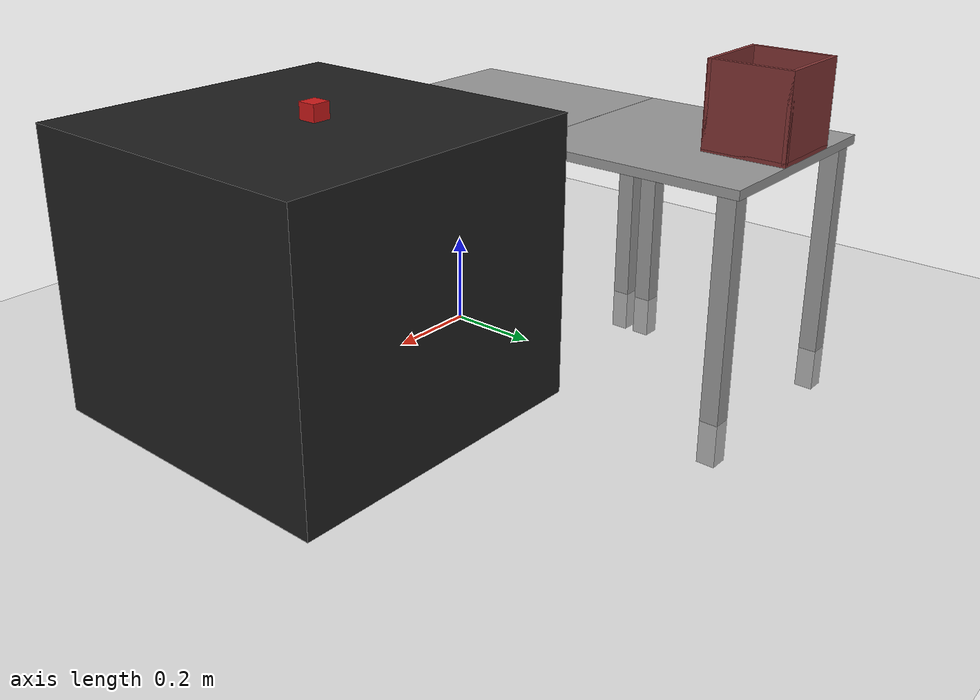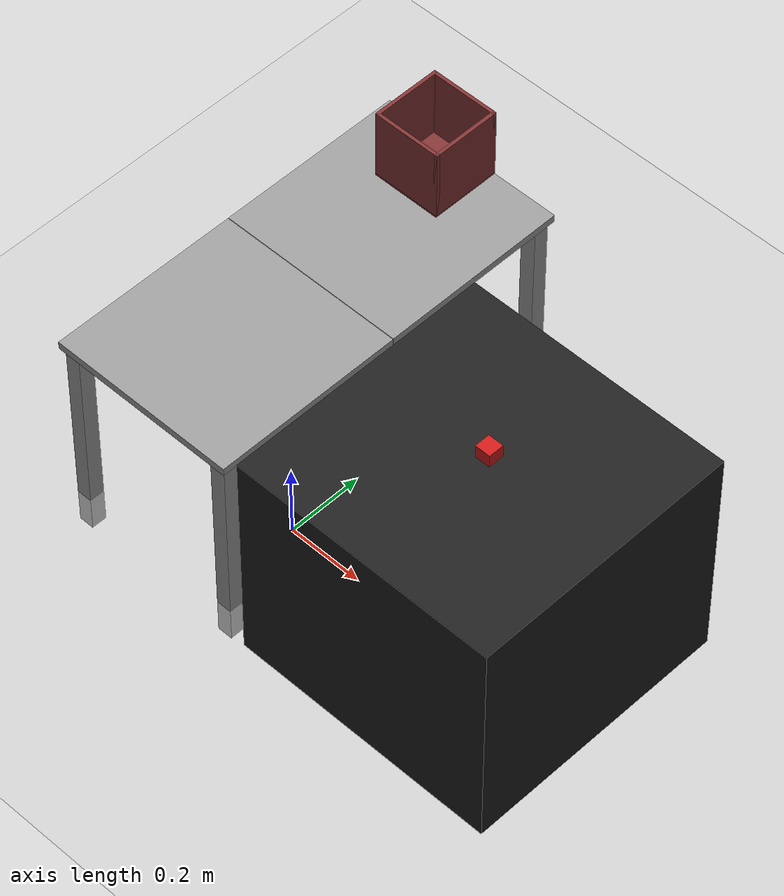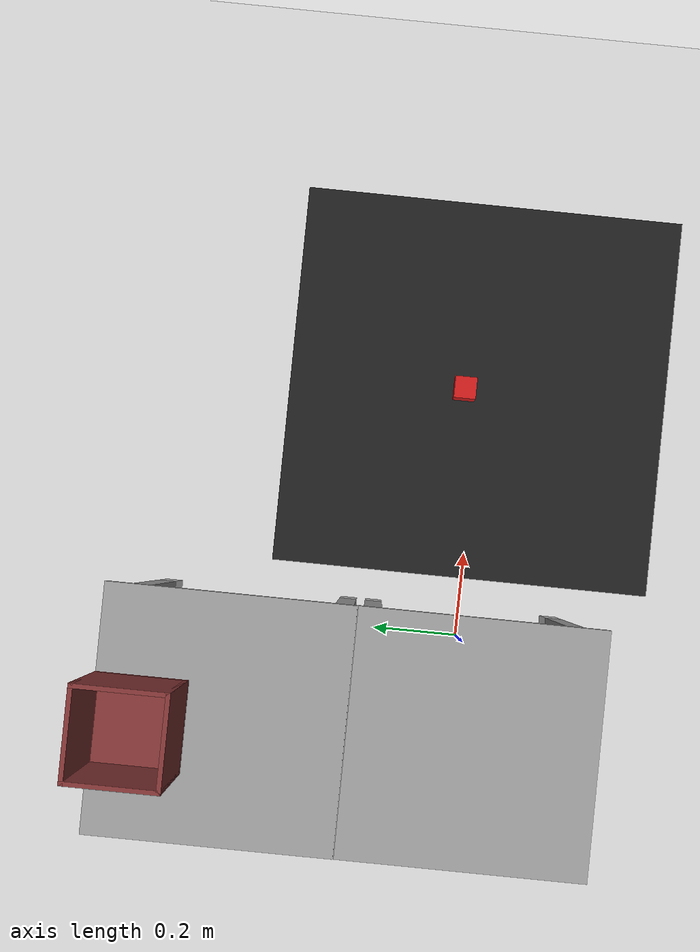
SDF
<sdf version="1.7">
 <world name="default">
  <plugin name="ros_link_attacher_plugin" filename="libgazebo_ros_link_attacher.so"/>
  <light name="sun" type="directional">
   <pose>0 0 10 0 -0 0</pose>
   <diffuse>0.8 0.8 0.8 1</diffuse>
   <specular>0.2 0.2 0.2 1</specular>
   <attenuation>
    <range>1000</range>
    <constant>0.9</constant>
    <linear>0.01</linear>
    <quadratic>0.001</quadratic>
   </attenuation>
   <direction>-0.5 0.1 -0.9</direction>
   <spot><inner_angle>0</inner_angle><outer_angle>0</outer_angle><falloff>0</falloff></spot>
  </light>
  <model name="ground_plane">
   <static>1</static>
   <link name="link">
    <collision name="collision">
     <geometry><plane><normal>0 0 1</normal><size>100 100</size></plane></geometry>
     <surface><friction><ode><mu>100</mu><mu2>50</mu2></ode></friction></surface>
    </collision>
    <visual name="visual">
     <cast_shadows>0</cast_shadows>
     <geometry><plane><normal>0 0 1</normal><size>100 100</size></plane></geometry>
     <material>
      <script><uri>file://media/materials/scripts/gazebo.material</uri><name>Gazebo/Grey</name></script>
     </material>
    </visual>
   </link>
  </model>
  <gravity>0 0 -9.8</gravity>
  <magnetic_field>6e-06 2.3e-05 -4.2e-05</magnetic_field>
  <atmosphere type="adiabatic"/>
  <physics name="default_physics" default="0" type="ode">
   <max_step_size>0.001</max_step_size>
   <real_time_factor>1</real_time_factor>
   <real_time_update_rate>1000</real_time_update_rate>
  </physics>
  <scene><ambient>0.4 0.4 0.4 1</ambient><background>0.7 0.7 0.7 1</background><shadows>1</shadows></scene>
  <spherical_coordinates>
   <surface_model>EARTH_WGS84</surface_model>
   <latitude_deg>0</latitude_deg>
   <longitude_deg>0</longitude_deg>
   <elevation>0</elevation>
   <heading_deg>0</heading_deg>
  </spherical_coordinates>
  <model name="ur5_base">
   <static>1</static>
   <link name="top_plate">
    <pose>0 0 0.58 0 -0 0</pose>
    <collision name="top_plate_collision">
     <geometry><box><size>0.5 0.5 0.02</size></box></geometry>
     <surface><contact><collide_bitmask>1</collide_bitmask></contact></surface>
    </collision>
    <visual name="top_plate_visual">
     <geometry><box><size>0.5 0.5 0.02</size></box></geometry>
     <material>
      <script><uri>file://media/materials/scripts/gazebo.material</uri><name>Gazebo/Grey</name></script>
     </material>
    </visual>
   </link>
   <link name="leg1">
    <pose>0.22 0.22 0.285 0 -0 0</pose>
    <collision name="leg1_collision"><geometry><box><size>0.04 0.04 0.57</size></box></geometry></collision>
    <visual name="leg1_visual">
     <geometry><box><size>0.04 0.04 0.57</size></box></geometry>
     <material>
      <script><uri>file://media/materials/scripts/gazebo.material</uri><name>Gazebo/Grey</name></script>
     </material>
    </visual>
   </link>
   <link name="leg2">
    <pose>-0.22 0.22 0.285 0 -0 0</pose>
    <collision name="leg2_collision"><geometry><box><size>0.04 0.04 0.57</size></box></geometry></collision>
    <visual name="leg2_visual">
     <geometry><box><size>0.04 0.04 0.57</size></box></geometry>
     <material>
      <script><uri>file://media/materials/scripts/gazebo.material</uri><name>Gazebo/Grey</name></script>
     </material>
    </visual>
   </link>
   <link name="leg3">
    <pose>0.22 -0.22 0.285 0 -0 0</pose>
    <collision name="leg3_collision"><geometry><box><size>0.04 0.04 0.57</size></box></geometry></collision>
    <visual name="leg3_visual">
     <geometry><box><size>0.04 0.04 0.57</size></box></geometry>
     <material>
      <script><uri>file://media/materials/scripts/gazebo.material</uri><name>Gazebo/Grey</name></script>
     </material>
    </visual>
   </link>
   <link name="leg4">
    <pose>-0.22 -0.22 0.285 0 -0 0</pose>
    <collision name="leg4_collision"><geometry><box><size>0.04 0.04 0.57</size></box></geometry></collision>
    <visual name="leg4_visual">
     <geometry><box><size>0.04 0.04 0.57</size></box></geometry>
     <material>
      <script><uri>file://media/materials/scripts/gazebo.material</uri><name>Gazebo/Grey</name></script>
     </material>
    </visual>
   </link>
   <pose>-0.1759 -0.012384 -0.095642 0 -0 0</pose>
  </model>
  <audio><device>default</device></audio>
  <model name="ur5_base_clone">
   <static>1</static>
   <link name="top_plate">
    <pose>0 0 0.58 0 -0 0</pose>
    <collision name="top_plate_collision">
     <geometry><box><size>0.5 0.5 0.02</size></box></geometry>
     <surface><contact><collide_bitmask>1</collide_bitmask></contact></surface>
    </collision>
    <visual name="top_plate_visual">
     <geometry><box><size>0.5 0.5 0.02</size></box></geometry>
     <material>
      <script><uri>file://media/materials/scripts/gazebo.material</uri><name>Gazebo/Grey</name></script>
     </material>
    </visual>
   </link>
   <link name="leg1">
    <pose>0.22 0.22 0.285 0 -0 0</pose>
    <collision name="leg1_collision"><geometry><box><size>0.04 0.04 0.57</size></box></geometry></collision>
    <visual name="leg1_visual">
     <geometry><box><size>0.04 0.04 0.57</size></box></geometry>
     <material>
      <script><uri>file://media/materials/scripts/gazebo.material</uri><name>Gazebo/Grey</name></script>
     </material>
    </visual>
   </link>
   <link name="leg2">
    <pose>-0.22 0.22 0.285 0 -0 0</pose>
    <collision name="leg2_collision"><geometry><box><size>0.04 0.04 0.57</size></box></geometry></collision>
    <visual name="leg2_visual">
     <geometry><box><size>0.04 0.04 0.57</size></box></geometry>
     <material>
      <script><uri>file://media/materials/scripts/gazebo.material</uri><name>Gazebo/Grey</name></script>
     </material>
    </visual>
   </link>
   <link name="leg3">
    <pose>0.22 -0.22 0.285 0 -0 0</pose>
    <collision name="leg3_collision"><geometry><box><size>0.04 0.04 0.57</size></box></geometry></collision>
    <visual name="leg3_visual">
     <geometry><box><size>0.04 0.04 0.57</size></box></geometry>
     <material>
      <script><uri>file://media/materials/scripts/gazebo.material</uri><name>Gazebo/Grey</name></script>
     </material>
    </visual>
   </link>
   <link name="leg4">
    <pose>-0.22 -0.22 0.285 0 -0 0</pose>
    <collision name="leg4_collision"><geometry><box><size>0.04 0.04 0.57</size></box></geometry></collision>
    <visual name="leg4_visual">
     <geometry><box><size>0.04 0.04 0.57</size></box></geometry>
     <material>
      <script><uri>file://media/materials/scripts/gazebo.material</uri><name>Gazebo/Grey</name></script>
     </material>
    </visual>
   </link>
   <pose>-0.176389 0.489025 -0.095642 0 -0 0</pose>
  </model>
  <model name="basket">
   <link name="base">
    <inertial>
     <mass>0.2</mass>
     <inertia><ixx>0.0001</ixx><iyy>0.0001</iyy><izz>0.0001</izz><ixy>0</ixy><ixz>0</ixz><iyz>0</iyz></inertia>
    </inertial>
    <visual name="base_visual">
     <geometry><box><size>0.185 0.185 0.009</size></box></geometry>
     <material>
      <emissive>0 0 0 1</emissive>
      <ambient>0.5 0.2 0.2 1</ambient>
      <diffuse>0.5 0.2 0.2 1</diffuse>
      <specular>0.01 0.01 0.01 1</specular>
     </material>
    </visual>
    <collision name="base_collision">
     <geometry><box><size>0.185 0.185 0.009</size></box></geometry>
     <surface><friction><ode><mu>10</mu><mu2>10</mu2></ode></friction></surface>
    </collision>
   </link>
   <link name="x1">
    <pose>0.088 0 0.0925 0 -0 0</pose>
    <inertial>
     <mass>0.2</mass>
     <inertia><ixx>0.0001</ixx><iyy>0.0001</iyy><izz>0.0001</izz><ixy>0</ixy><ixz>0</ixz><iyz>0</iyz></inertia>
    </inertial>
    <visual name="x1_visual">
     <geometry><box><size>0.009 0.185 0.185</size></box></geometry>
     <material>
      <emissive>0 0 0 1</emissive>
      <ambient>0.5 0.2 0.2 1</ambient>
      <diffuse>0.5 0.2 0.2 1</diffuse>
      <specular>0.01 0.01 0.01 1</specular>
     </material>
    </visual>
    <collision name="x1_collision">
     <geometry><box><size>0.009 0.185 0.185</size></box></geometry>
     <surface><friction><ode><mu>10</mu><mu2>10</mu2></ode></friction></surface>
    </collision>
   </link>
   <joint name="x1_joint" type="fixed"><parent>base</parent><child>x1</child></joint>
   <link name="x2">
    <pose>-0.088 0 0.0925 0 -0 0</pose>
    <inertial>
     <mass>0.2</mass>
     <inertia><ixx>0.0001</ixx><iyy>0.0001</iyy><izz>0.0001</izz><ixy>0</ixy><ixz>0</ixz><iyz>0</iyz></inertia>
    </inertial>
    <visual name="x2_visual">
     <geometry><box><size>0.009 0.185 0.185</size></box></geometry>
     <material>
      <emissive>0 0 0 1</emissive>
      <ambient>0.5 0.2 0.2 1</ambient>
      <diffuse>0.5 0.2 0.2 1</diffuse>
      <specular>0.01 0.01 0.01 1</specular>
     </material>
    </visual>
    <collision name="x2_collision">
     <geometry><box><size>0.009 0.185 0.185</size></box></geometry>
     <surface><friction><ode><mu>10</mu><mu2>10</mu2></ode></friction></surface>
    </collision>
   </link>
   <joint name="x2_joint" type="fixed"><parent>base</parent><child>x2</child></joint>
   <link name="y1">
    <pose>0 0.088 0.0925 0 -0 0</pose>
    <inertial>
     <mass>0.2</mass>
     <inertia><ixx>0.0001</ixx><iyy>0.0001</iyy><izz>0.0001</izz><ixy>0</ixy><ixz>0</ixz><iyz>0</iyz></inertia>
    </inertial>
    <visual name="y1_visual">
     <geometry><box><size>0.185 0.009 0.185</size></box></geometry>
     <material>
      <emissive>0 0 0 1</emissive>
      <ambient>0.5 0.2 0.2 1</ambient>
      <diffuse>0.5 0.2 0.2 1</diffuse>
      <specular>0.01 0.01 0.01 1</specular>
     </material>
    </visual>
    <collision name="y1_collision">
     <geometry><box><size>0.185 0.009 0.185</size></box></geometry>
     <surface><friction><ode><mu>10</mu><mu2>10</mu2></ode></friction></surface>
    </collision>
   </link>
   <joint name="y1_joint" type="fixed"><parent>base</parent><child>y1</child></joint>
   <link name="y2">
    <pose>0 -0.088 0.0925 0 -0 0</pose>
    <inertial>
     <mass>0.2</mass>
     <inertia><ixx>0.0001</ixx><iyy>0.0001</iyy><izz>0.0001</izz><ixy>0</ixy><ixz>0</ixz><iyz>0</iyz></inertia>
    </inertial>
    <visual name="y2_visual">
     <geometry><box><size>0.185 0.009 0.185</size></box></geometry>
     <material>
      <emissive>0 0 0 1</emissive>
      <ambient>0.5 0.2 0.2 1</ambient>
      <diffuse>0.5 0.2 0.2 1</diffuse>
      <specular>0.01 0.01 0.01 1</specular>
     </material>
    </visual>
    <collision name="y2_collision">
     <geometry><box><size>0.185 0.009 0.185</size></box></geometry>
     <surface><friction><ode><mu>10</mu><mu2>10</mu2></ode></friction></surface>
    </collision>
   </link>
   <joint name="y2_joint" type="fixed"><parent>base</parent><child>y2</child></joint>
   <pose>-0.197148 0.646524 0.498849 -0.000103 -0 -3.1e-05</pose>
  </model>
  <model name="table">
   <static>1</static>
   <link name="base_link">
    <inertial>
     <pose>0 0 0.1 0 -0 0</pose>
     <mass>1</mass>
     <inertia><ixx>1</ixx><ixy>0</ixy><ixz>0</ixz><iyy>1</iyy><iyz>0</iyz><izz>1</izz></inertia>
    </inertial>
    <collision name="base_link_collision">
     <pose>0 0 0.3 0 -0 0</pose>
     <geometry><box><size>0.7 0.7 0.6</size></box></geometry>
     <surface><friction><ode><mu>50</mu><mu2>50</mu2></ode></friction></surface>
    </collision>
    <visual name="base_link_visual">
     <pose>0 0 0.3 0 -0 0</pose>
     <geometry><box><size>0.7 0.7 0.6</size></box></geometry>
     <material>
      <script><name>Gazebo/FlatBlack</name><uri>file://media/materials/scripts/gazebo.material</uri></script>
     </material>
    </visual>
   </link>
   <joint name="joint_fix" type="fixed"><child>base_link</child><parent>world</parent></joint>
   <pose>0.499948 0.05504 0 0 -0 1.57</pose>
  </model>
  <model name="obj_0">
   <link name="base_link">
    <inertial>
     <mass>0.05</mass>
     <inertia><ixx>1e-05</ixx><ixy>0</ixy><ixz>0</ixz><iyy>1e-05</iyy><iyz>0</iyz><izz>1e-05</izz></inertia>
    </inertial>
    <collision name="collision">
     <geometry><box><size>0.03 0.03 0.03</size></box></geometry>
     <surface>
      <friction><ode><mu>50</mu><mu2>50</mu2></ode></friction>
      <contact><ode><min_depth>0.001</min_depth><max_vel>0</max_vel></ode></contact>
     </surface>
    </collision>
    <visual name="visual">
     <geometry><box><size>0.04 0.04 0.04</size></box></geometry>
     <material>
      <ambient>0.8 0.1 0.1 1</ambient>
      <diffuse>0.8 0.1 0.1 1</diffuse>
      <specular>0 0 0 0</specular>
      <emissive>0 0 0 1</emissive>
     </material>
    </visual>
   </link>
   <pose>0.500002 0.080098 0.614989 0.000168 0.000168 4.2e-05</pose>
  </model>
  <light name="user_point_light_0" type="point">
   <pose>-0.983683 -0.431117 1 0 -0 0</pose>
   <diffuse>0.5 0.5 0.5 1</diffuse>
   <specular>0.1 0.1 0.1 1</specular>
   <attenuation>
    <range>20</range>
    <constant>0.5</constant>
    <linear>0.01</linear>
    <quadratic>0.001</quadratic>
   </attenuation>
   <cast_shadows>0</cast_shadows>
   <direction>0 0 -1</direction>
  </light>
 </world>
</sdf>
